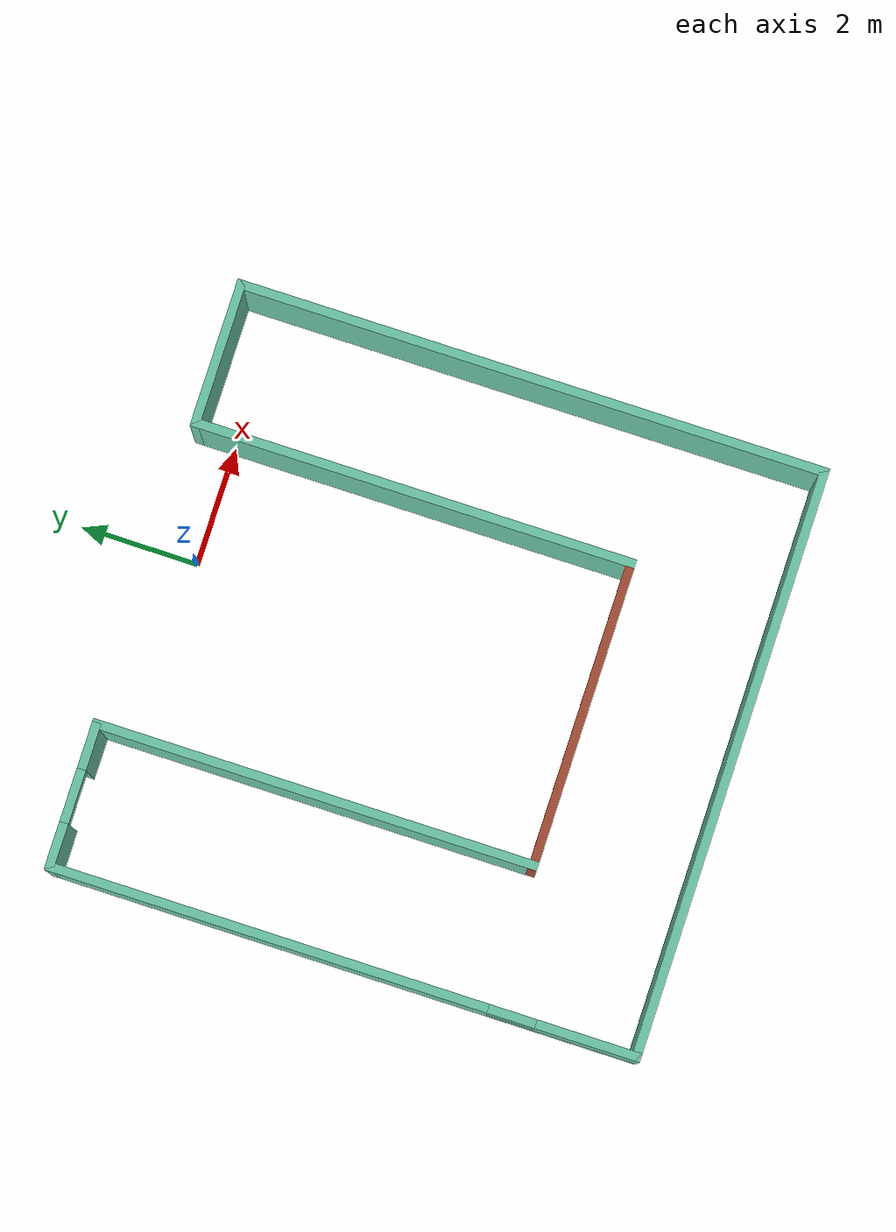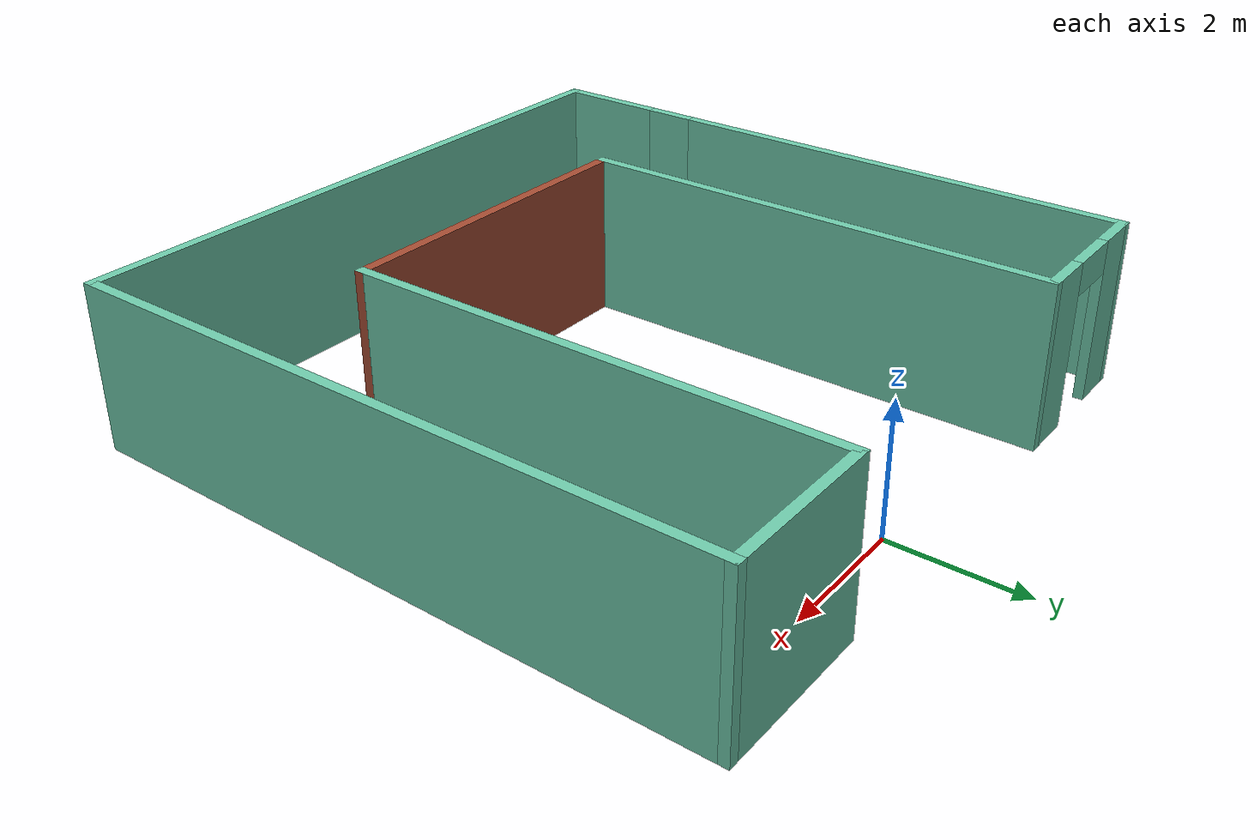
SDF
<?xml version='1.0'?>
<sdf version='1.6'>
  <model name='mybuilding'>
    <pose frame=''>-0.590101 -4.33263 0 0 -0 0</pose>
    <link name='Wall_0'>
      <pose frame=''>-3.75 4.925 0 0 -0 3.14159</pose>
      <visual name='Wall_0_Visual_0'>
        <pose frame=''>-0.85528 0 1.25 0 -0 0</pose>
        <geometry>
          <box>
            <size>0.789441 0.15 2.5</size>
          </box>
        </geometry>
        <material>
          <script>
            <uri>file://media/materials/scripts/gazebo.material</uri>
            <name>Gazebo/Grey</name>
          </script>
          <ambient>0.435294 0.796078 0.67451 1</ambient>
        </material>
        <meta>
          <layer>0</layer>
        </meta>
      </visual>
      <collision name='Wall_0_Collision_0'>
        <geometry>
          <box>
            <size>0.789441 0.15 2.5</size>
          </box>
        </geometry>
        <pose frame=''>-0.85528 0 1.25 0 -0 0</pose>
      </collision>
      <visual name='Wall_0_Visual_1'>
        <pose frame=''>0.84472 0 1.25 0 -0 0</pose>
        <geometry>
          <box>
            <size>0.810559 0.15 2.5</size>
          </box>
        </geometry>
        <material>
          <script>
            <uri>file://media/materials/scripts/gazebo.material</uri>
            <name>Gazebo/Grey</name>
          </script>
          <ambient>0.435294 0.796078 0.67451 1</ambient>
        </material>
        <meta>
          <layer>0</layer>
        </meta>
      </visual>
      <collision name='Wall_0_Collision_1'>
        <geometry>
          <box>
            <size>0.810559 0.15 2.5</size>
          </box>
        </geometry>
        <pose frame=''>0.84472 0 1.25 0 -0 0</pose>
      </collision>
      <visual name='Wall_0_Visual_2'>
        <pose frame=''>-0.010559 0 2.25 0 -0 0</pose>
        <geometry>
          <box>
            <size>0.9 0.15 0.5</size>
          </box>
        </geometry>
        <material>
          <script>
            <uri>file://media/materials/scripts/gazebo.material</uri>
            <name>Gazebo/Grey</name>
          </script>
          <ambient>0.435294 0.796078 0.67451 1</ambient>
        </material>
        <meta>
          <layer>0</layer>
        </meta>
      </visual>
      <collision name='Wall_0_Collision_2'>
        <geometry>
          <box>
            <size>0.9 0.15 0.5</size>
          </box>
        </geometry>
        <pose frame=''>-0.010559 0 2.25 0 -0 0</pose>
      </collision>
    </link>
    <link name='Wall_1'>
      <pose frame=''>-4.925 0 0 0 0 -1.5708</pose>
      <visual name='Wall_1_Visual_0'>
        <pose frame=''>-1.28269 0 1.25 0 -0 0</pose>
        <geometry>
          <box>
            <size>7.43463 0.15 2.5</size>
          </box>
        </geometry>
        <material>
          <script>
            <uri>file://media/materials/scripts/gazebo.material</uri>
            <name>Gazebo/Grey</name>
          </script>
          <ambient>0.435294 0.796078 0.67451 1</ambient>
        </material>
        <meta>
          <layer>0</layer>
        </meta>
      </visual>
      <collision name='Wall_1_Collision_0'>
        <geometry>
          <box>
            <size>7.43463 0.15 2.5</size>
          </box>
        </geometry>
        <pose frame=''>-1.28269 0 1.25 0 -0 0</pose>
      </collision>
      <visual name='Wall_1_Visual_1'>
        <pose frame=''>3.71732 0 0.25 0 -0 0</pose>
        <geometry>
          <box>
            <size>2.56537 0.15 0.5</size>
          </box>
        </geometry>
        <material>
          <script>
            <uri>file://media/materials/scripts/gazebo.material</uri>
            <name>Gazebo/Grey</name>
          </script>
          <ambient>0.435294 0.796078 0.67451 1</ambient>
        </material>
        <meta>
          <layer>0</layer>
        </meta>
      </visual>
      <collision name='Wall_1_Collision_1'>
        <geometry>
          <box>
            <size>2.56537 0.15 0.5</size>
          </box>
        </geometry>
        <pose frame=''>3.71732 0 0.25 0 -0 0</pose>
      </collision>
      <visual name='Wall_1_Visual_2'>
        <pose frame=''>4.11731 0 1.5 0 -0 0</pose>
        <geometry>
          <box>
            <size>1.76537 0.15 2</size>
          </box>
        </geometry>
        <material>
          <script>
            <uri>file://media/materials/scripts/gazebo.material</uri>
            <name>Gazebo/Grey</name>
          </script>
          <ambient>0.435294 0.796078 0.67451 1</ambient>
        </material>
        <meta>
          <layer>0</layer>
        </meta>
      </visual>
      <collision name='Wall_1_Collision_2'>
        <geometry>
          <box>
            <size>1.76537 0.15 2</size>
          </box>
        </geometry>
        <pose frame=''>4.11731 0 1.5 0 -0 0</pose>
      </collision>
      <visual name='Wall_1_Visual_3'>
        <pose frame=''>2.83463 0 1.9 0 -0 0</pose>
        <geometry>
          <box>
            <size>0.8 0.15 1.2</size>
          </box>
        </geometry>
        <material>
          <script>
            <uri>file://media/materials/scripts/gazebo.material</uri>
            <name>Gazebo/Grey</name>
          </script>
          <ambient>0.435294 0.796078 0.67451 1</ambient>
        </material>
        <meta>
          <layer>0</layer>
        </meta>
      </visual>
      <collision name='Wall_1_Collision_3'>
        <geometry>
          <box>
            <size>0.8 0.15 1.2</size>
          </box>
        </geometry>
        <pose frame=''>2.83463 0 1.9 0 -0 0</pose>
      </collision>
    </link>
    <link name='Wall_2'>
      <collision name='Wall_2_Collision'>
        <geometry>
          <box>
            <size>10 0.15 2.5</size>
          </box>
        </geometry>
        <pose frame=''>0 0 1.25 0 -0 0</pose>
      </collision>
      <visual name='Wall_2_Visual'>
        <pose frame=''>0 0 1.25 0 -0 0</pose>
        <geometry>
          <box>
            <size>10 0.15 2.5</size>
          </box>
        </geometry>
        <material>
          <script>
            <uri>file://media/materials/scripts/gazebo.material</uri>
            <name>Gazebo/Grey</name>
          </script>
          <ambient>0.435294 0.796078 0.67451 1</ambient>
        </material>
        <meta>
          <layer>0</layer>
        </meta>
      </visual>
      <pose frame=''>0 -4.925 0 0 -0 0</pose>
    </link>
    <link name='Wall_3'>
      <collision name='Wall_3_Collision'>
        <geometry>
          <box>
            <size>10 0.15 2.5</size>
          </box>
        </geometry>
        <pose frame=''>0 0 1.25 0 -0 0</pose>
      </collision>
      <visual name='Wall_3_Visual'>
        <pose frame=''>0 0 1.25 0 -0 0</pose>
        <geometry>
          <box>
            <size>10 0.15 2.5</size>
          </box>
        </geometry>
        <material>
          <script>
            <uri>file://media/materials/scripts/gazebo.material</uri>
            <name>Gazebo/Grey</name>
          </script>
          <ambient>0.435294 0.796078 0.67451 1</ambient>
        </material>
        <meta>
          <layer>0</layer>
        </meta>
      </visual>
      <pose frame=''>4.925 0 0 0 -0 1.5708</pose>
    </link>
    <link name='Wall_4'>
      <collision name='Wall_4_Collision'>
        <geometry>
          <box>
            <size>2.5 0.15 2.5</size>
          </box>
        </geometry>
        <pose frame=''>0 0 1.25 0 -0 0</pose>
      </collision>
      <visual name='Wall_4_Visual'>
        <pose frame=''>0 0 1.25 0 -0 0</pose>
        <geometry>
          <box>
            <size>2.5 0.15 2.5</size>
          </box>
        </geometry>
        <material>
          <script>
            <uri>file://media/materials/scripts/gazebo.material</uri>
            <name>Gazebo/Grey</name>
          </script>
          <ambient>0.435294 0.796078 0.67451 1</ambient>
        </material>
        <meta>
          <layer>0</layer>
        </meta>
      </visual>
      <pose frame=''>3.75 4.925 0 0 -0 3.14159</pose>
    </link>
    <link name='Wall_5'>
      <collision name='Wall_5_Collision'>
        <geometry>
          <box>
            <size>7.5 0.15 2.5</size>
          </box>
        </geometry>
        <pose frame=''>0 0 1.25 0 -0 0</pose>
      </collision>
      <visual name='Wall_5_Visual'>
        <pose frame=''>0 0 1.25 0 -0 0</pose>
        <geometry>
          <box>
            <size>7.5 0.15 2.5</size>
          </box>
        </geometry>
        <material>
          <script>
            <uri>file://media/materials/scripts/gazebo.material</uri>
            <name>Gazebo/Grey</name>
          </script>
          <ambient>0.435294 0.796078 0.67451 1</ambient>
        </material>
        <meta>
          <layer>0</layer>
        </meta>
      </visual>
      <pose frame=''>2.575 1.25 0 0 0 -1.5708</pose>
    </link>
    <link name='Wall_6'>
      <collision name='Wall_6_Collision'>
        <geometry>
          <box>
            <size>5.25 0.15 2.5</size>
          </box>
        </geometry>
        <pose frame=''>0 0 1.25 0 -0 0</pose>
      </collision>
      <visual name='Wall_6_Visual'>
        <pose frame=''>0 0 1.25 0 -0 0</pose>
        <geometry>
          <box>
            <size>5.25 0.15 2.5</size>
          </box>
        </geometry>
        <material>
          <script>
            <uri>file://media/materials/scripts/gazebo.material</uri>
            <name>Gazebo/Bricks</name>
          </script>
          <ambient>0.435294 0.796078 0.67451 1</ambient>
        </material>
        <meta>
          <layer>0</layer>
        </meta>
      </visual>
      <pose frame=''>0.025 -2.425 0 0 -0 3.14159</pose>
    </link>
    <link name='Wall_8'>
      <collision name='Wall_8_Collision'>
        <geometry>
          <box>
            <size>7.5 0.15 2.5</size>
          </box>
        </geometry>
        <pose frame=''>0 0 1.25 0 -0 0</pose>
      </collision>
      <visual name='Wall_8_Visual'>
        <pose frame=''>0 0 1.25 0 -0 0</pose>
        <geometry>
          <box>
            <size>7.5 0.15 2.5</size>
          </box>
        </geometry>
        <material>
          <script>
            <uri>file://media/materials/scripts/gazebo.material</uri>
            <name>Gazebo/Grey</name>
          </script>
          <ambient>0.435294 0.796078 0.67451 1</ambient>
        </material>
        <meta>
          <layer>0</layer>
        </meta>
      </visual>
      <pose frame=''>-2.525 1.25 0 0 -0 1.5708</pose>
    </link>
    <static>1</static>
  </model>
</sdf>
